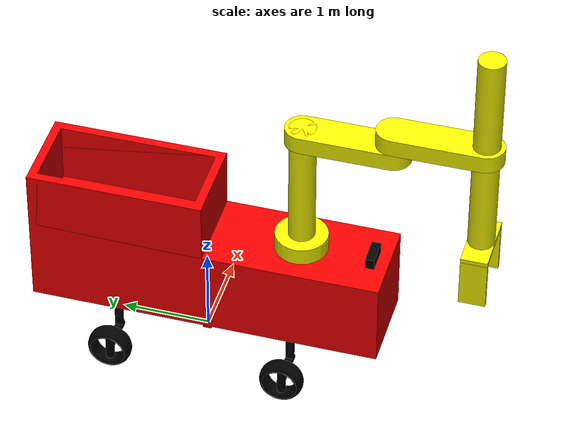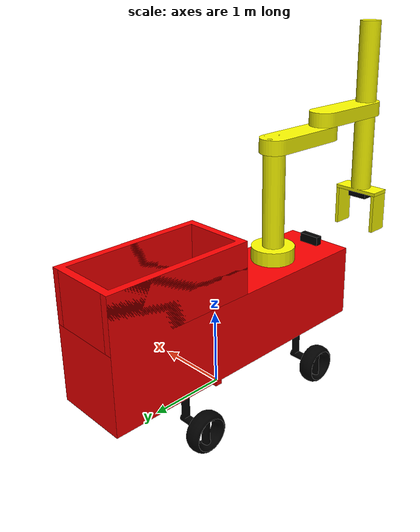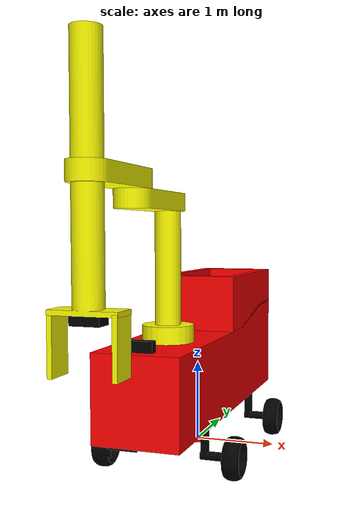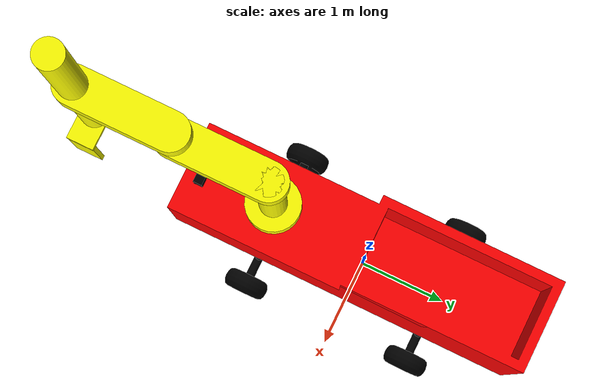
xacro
<?xml version="1.0"?>

<robot name="robot_model" xmlns:xacro="http://wiki.ros.org/xacro">

    <!-- includes -->
    <xacro:include filename="$(find robot_model_description)/urdf/base/robot_base.urdf.xacro"/>
    <xacro:include filename="$(find robot_model_description)/urdf/wheels/rover_wheel.urdf.xacro"/>
    <xacro:include filename="$(find robot_model_description)/urdf/arm/scara.urdf.xacro"/>
    <xacro:include filename="$(find robot_model_description)/urdf/arm/gripper.urdf.xacro"/>
    <xacro:include filename="$(find robot_model_description)/urdf/ros2_control.urdf.xacro"/>
    <xacro:include filename="$(find robot_model_description)/urdf/utils/utils.urdf.xacro"/>
    <xacro:include filename="$(find robot_model_description)/urdf/sensors/camera.urdf.xacro"/>
    <xacro:include filename="$(find robot_model_description)/urdf/sensors/imu_sensor.urdf.xacro"/>
    <xacro:include filename="$(find robot_model_description)/urdf/sensors/sensors.urdf.xacro"/>

    <!-- properties -->
    <xacro:property name="PI" value="3.1415926535897931"/>

    <!-- arguments -->
    <xacro:arg name="robot_ns" default=""/>
    <xacro:arg name="prefix" default=""/>

    <!-- robot parts -->
    <xacro:utils/>

    <!-- base -->
    <xacro:robot_base/>

    <!-- wheels -->
    <xacro:rover_wheel parent="base_link"/>

    <!-- arm -->
    <xacro:scara parent="base_link"/>
    <xacro:gripper parent="arm_gripper_link"/>

    <!-- sensors -->
    <xacro:camera parent="base_link"/>
    <xacro:sensors parent="arm_gripper_link"/>
    <xacro:imu_sensor parent="base_link"/>

    <!-- gazebo ROS control plugins -->
    <xacro:arg name="config_controllers" default="$(find robot_model_description)/config/rover_controllers.yaml"/>
    <xacro:arg name="update_rate" default="30"/>
    <xacro:ros2_control/>

</robot>

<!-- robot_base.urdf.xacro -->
<robot name="robot_model" xmlns:xacro="http://wiki.ros.org/xacro">

  <xacro:macro name="robot_base" >

    <joint name="base_link_joint" type="fixed">
      <origin rpy="0.00000 0.00000 0.00000" xyz="0.00000 0.00000 1.00000"/>
      <parent link="base_footprint"/>
      <child link="base_link"/>
    </joint>

    <joint name="box_down_side_link_joint" type="fixed">
      <origin rpy="0.00000 0.00000 1.57080" xyz="0.00000 1.86075 0.77413"/>
      <parent link="base_link"/>
      <child link="box_down_side_link"/>
    </joint>

    <joint name="box_left_side_link_joint" type="fixed">
      <origin rpy="0.00000 0.00000 0.00000" xyz="0.45000 0.91075 0.77413"/>
      <parent link="base_link"/>
      <child link="box_left_side_link"/>
    </joint>

    <joint name="box_right_side_link_joint" type="fixed">
      <origin rpy="0.00000 0.00000 0.00000" xyz="-0.45000 0.91075 0.77413"/>
      <parent link="base_link"/>
      <child link="box_right_side_link"/>
    </joint>

    <joint name="box_up_side_link_joint" type="fixed">
      <origin rpy="0.00000 0.00000 1.57080" xyz="0.00000 -0.03925 0.77413"/>
      <parent link="base_link"/>
      <child link="box_up_side_link"/>
    </joint>

    <link name="base_link">
      <collision name="Base_collision">
        <origin rpy="0.00000 0.00000 0.00000" xyz="0.00000 -0.09000 -0.07000"/>
        <geometry>
          <box size="1.00000 4.00000 1.00000"/>
        </geometry>
      </collision>
      <inertial>
        <inertia ixx="182.69966" ixy="0.00000" ixz="0.00000" iyy="44.38927" iyz="-36.14004" izz="154.63375"/>
        <origin rpy="0.00000 0.00000 0.00000" xyz="0.00000 0.29214 0.24832"/>
        <mass value="100.00000"/>
      </inertial>
      <visual name="base">
        <origin rpy="0.00000 0.00000 0.00000" xyz="0.00000 0.00000 0.00000"/>
        <material name="red.001"/>
        <geometry>
          <mesh filename="file://$(find robot_model_description)/meshes/dae/Cube.003.dae" scale="0.05000 1.00000 0.35000"/>
        </geometry>
      </visual>
    </link>

    <link name="box_down_side_link">
      <collision name="box_down_side_collision">
        <origin rpy="0.00000 0.00000 0.00000" xyz="0.00000 0.00000 0.00000"/>
        <geometry>
          <box size="0.10000 0.80000 0.70000"/>
        </geometry>
      </collision>
      <inertial>
        <inertia ixx="0.41667" ixy="0.00000" ixz="0.00000" iyy="0.94167" iyz="0.00000" izz="0.54167"/>
        <origin rpy="0.00000 0.00000 0.00000" xyz="0.00000 0.00000 0.00000"/>
        <mass value="10.00000"/>
      </inertial>
      <visual name="box_down_side">
        <origin rpy="0.00000 0.00000 0.00000" xyz="0.00000 0.00000 0.00000"/>
        <material name="red.001"/>
        <geometry>
          <box size="0.10000 0.80000 0.70000"/>
        </geometry>
      </visual>
    </link>

    <link name="box_left_side_link">
      <collision name="box_left_side_collision">
        <origin rpy="0.00000 0.00000 0.00000" xyz="0.00000 0.00000 0.00000"/>
        <geometry>
          <box size="0.10000 2.00000 0.70000"/>
        </geometry>
      </collision>
      <inertial>
        <inertia ixx="3.74167" ixy="0.00000" ixz="0.00000" iyy="0.41667" iyz="0.00000" izz="3.34167"/>
        <origin rpy="0.00000 0.00000 0.00000" xyz="0.00000 0.00000 0.00000"/>
        <mass value="10.00000"/>
      </inertial>
      <visual name="box_left_side">
        <origin rpy="0.00000 0.00000 0.00000" xyz="0.00000 0.00000 0.00000"/>
        <material name="red.001"/>
        <geometry>
          <box size="0.10000 2.00000 0.70000"/>
        </geometry>
      </visual>
    </link>

    <link name="box_right_side_link">
      <collision name="box_right_side_collision">
        <origin rpy="0.00000 0.00000 0.00000" xyz="0.00000 0.00000 0.00000"/>
        <geometry>
          <box size="0.10000 2.00000 0.70000"/>
        </geometry>
      </collision>
      <inertial>
        <inertia ixx="3.74167" ixy="0.00000" ixz="0.00000" iyy="0.41667" iyz="0.00000" izz="3.34167"/>
        <origin rpy="0.00000 0.00000 0.00000" xyz="0.00000 0.00000 0.00000"/>
        <mass value="10.00000"/>
      </inertial>
      <visual name="box_right_side">
        <origin rpy="0.00000 0.00000 0.00000" xyz="0.00000 0.00000 0.00000"/>
        <material name="red.001"/>
        <geometry>
          <box size="0.10000 2.00000 0.70000"/>
        </geometry>
      </visual>
    </link>

    <link name="box_up_side_link">
      <collision name="box_up_side_collision">
        <origin rpy="0.00000 0.00000 0.00000" xyz="0.00000 0.00000 0.00000"/>
        <geometry>
          <box size="0.10000 0.80000 0.70000"/>
        </geometry>
      </collision>
      <inertial>
        <inertia ixx="0.41667" ixy="0.00000" ixz="0.00000" iyy="0.94167" iyz="0.00000" izz="0.54167"/>
        <origin rpy="0.00000 0.00000 0.00000" xyz="0.00000 0.00000 0.00000"/>
        <mass value="10.00000"/>
      </inertial>
      <visual name="box_up_side">
        <origin rpy="0.00000 0.00000 0.00000" xyz="0.00000 0.00000 0.00000"/>
        <material name="red.001"/>
        <geometry>
          <box size="0.10000 0.80000 0.70000"/>
        </geometry>
      </visual>
    </link>

    <link name="base_footprint">
      <collision name="base_footprint_collision">
        <origin rpy="0.00000 0.00000 0.00000" xyz="0.00000 0.00000 0.00000"/>
        <geometry>
          <box size="0.10000 0.10000 0.10000"/>
        </geometry>
      </collision>
      <visual name="base_footprint">
        <origin rpy="0.00000 0.00000 0.00000" xyz="0.00000 0.00000 0.00000"/>
        <material name="red.001"/>
        <geometry>
          <box size="0.10000 0.10000 0.10000"/>
        </geometry>
      </visual>
    </link>

  </xacro:macro>
</robot>

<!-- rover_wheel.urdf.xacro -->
<robot name="robot_model" xmlns:xacro="http://wiki.ros.org/xacro">

  <xacro:macro name="rover_wheel"  params="parent">

    <joint name="subjection_down_left_wheel_link_joint" type="fixed">
      <origin rpy="0.00000 0.00000 0.00000" xyz="0.53571 0.91075 -0.81158"/>
      <parent link="base_link"/>
      <child link="subjection_down_left_wheel_link"/>
    </joint>

    <joint name="subjection_down_right_wheel_link_joint" type="fixed">
      <origin rpy="0.00000 0.00000 0.00000" xyz="-0.53571 0.91075 -0.81158"/>
      <parent link="base_link"/>
      <child link="subjection_down_right_wheel_link"/>
    </joint>

    <joint name="subjection_up_left_wheel_link_joint" type="fixed">
      <origin rpy="0.00000 0.00000 0.00000" xyz="0.53571 -1.08925 -0.81158"/>
      <parent link="base_link"/>
      <child link="subjection_up_left_wheel_link"/>
    </joint>

    <joint name="subjection_up_right_wheel_link_joint" type="fixed">
      <origin rpy="0.00000 0.00000 0.00000" xyz="-0.53571 -1.08925 -0.81158"/>
      <parent link="base_link"/>
      <child link="subjection_up_right_wheel_link"/>
    </joint>

    <joint name="wheel_down_left_link_joint" type="continuous">
      <limit lower="0" upper="0" effort="1000.00000" velocity="100.00000"/>
      <origin rpy="0.00000 1.57080 0.00000" xyz="0.26429 0.00000 -0.06429"/>
      <parent link="subjection_down_left_wheel_link"/>
      <child link="wheel_down_left_link"/>
      <axis xyz="0.00000 0.00000 1.00000"/>
    </joint>

    <joint name="wheel_down_right_link_joint" type="continuous">
      <limit lower="0" upper="0" effort="1000.00000" velocity="100.00000"/>
      <origin rpy="0.00000 1.57080 0.00000" xyz="-0.26429 0.00000 -0.06429"/>
      <parent link="subjection_down_right_wheel_link"/>
      <child link="wheel_down_right_link"/>
      <axis xyz="0.00000 0.00000 1.00000"/>
    </joint>

    <joint name="wheel_up_left_link_joint" type="continuous">
      <limit lower="0" upper="0" effort="1000.00000" velocity="100.00000"/>
      <origin rpy="0.00000 1.57080 0.00000" xyz="0.26429 0.00000 -0.06429"/>
      <parent link="subjection_up_left_wheel_link"/>
      <child link="wheel_up_left_link"/>
      <axis xyz="0.00000 0.00000 1.00000"/>
    </joint>

    <joint name="wheel_up_right_link_joint" type="continuous">
      <limit lower="0" upper="0" effort="1000.00000" velocity="100.00000"/>
      <origin rpy="0.00000 1.57080 0.00000" xyz="-0.26429 0.00000 -0.06429"/>
      <parent link="subjection_up_right_wheel_link"/>
      <child link="wheel_up_right_link"/>
      <axis xyz="0.00000 0.00000 1.00000"/>
    </joint>

    <link name="subjection_down_left_wheel_link">
      <collision name="subjection_down_left_wheel_collision">
        <origin rpy="0.00000 1.57080 0.00000" xyz="0.00000 0.00000 0.00000"/>
        <geometry>
          <mesh filename="file://$(find robot_model_description)/meshes/dae/Cylinder.009.dae" scale="0.05000 0.05000 0.20000"/>
        </geometry>
      </collision>
      <inertial>
        <inertia ixx="0.09178" ixy="0.00000" ixz="0.05238" iyy="0.21726" iyz="0.00000" izz="0.13657"/>
        <origin rpy="0.00000 0.00000 0.00000" xyz="0.00000 0.00000 0.00000"/>
        <mass value="10.00000"/>
      </inertial>
      <visual name="subjection_down_left_wheel">
        <origin rpy="0.00000 1.57080 0.00000" xyz="0.00000 0.00000 0.00000"/>
        <material name="black.007"/>
        <geometry>
          <mesh filename="file://$(find robot_model_description)/meshes/dae/Cylinder.009.dae" scale="0.05000 0.05000 0.20000"/>
        </geometry>
      </visual>
    </link>

    <link name="subjection_down_right_wheel_link">
      <collision name="subjection_down_right_wheel_collision">
        <origin rpy="0.00000 1.57080 0.00000" xyz="0.00000 0.00000 0.00000"/>
        <geometry>
          <mesh filename="file://$(find robot_model_description)/meshes/dae/Cylinder.004.dae" scale="0.05000 0.05000 0.20000"/>
        </geometry>
      </collision>
      <inertial>
        <inertia ixx="0.09178" ixy="0.00000" ixz="-0.05238" iyy="0.21726" iyz="0.00000" izz="0.13657"/>
        <origin rpy="0.00000 0.00000 0.00000" xyz="0.00000 0.00000 0.00000"/>
        <mass value="10.00000"/>
      </inertial>
      <visual name="subjection_down_right_wheel">
        <origin rpy="0.00000 1.57080 0.00000" xyz="0.00000 0.00000 0.00000"/>
        <material name="black.007"/>
        <geometry>
          <mesh filename="file://$(find robot_model_description)/meshes/dae/Cylinder.004.dae" scale="0.05000 0.05000 0.20000"/>
        </geometry>
      </visual>
    </link>

    <link name="subjection_up_left_wheel_link">
      <collision name="subjection_up_left_wheel_collision">
        <origin rpy="0.00000 1.57080 0.00000" xyz="0.00000 0.00000 0.00000"/>
        <geometry>
          <mesh filename="file://$(find robot_model_description)/meshes/dae/Cylinder.010.dae" scale="0.05000 0.05000 0.20000"/>
        </geometry>
      </collision>
      <inertial>
        <inertia ixx="0.09178" ixy="0.00000" ixz="0.05238" iyy="0.21726" iyz="0.00000" izz="0.13657"/>
        <origin rpy="0.00000 0.00000 0.00000" xyz="0.00000 0.00000 0.00000"/>
        <mass value="10.00000"/>
      </inertial>
      <visual name="subjection_up_left_wheel">
        <origin rpy="0.00000 1.57080 0.00000" xyz="0.00000 0.00000 0.00000"/>
        <material name="black.007"/>
        <geometry>
          <mesh filename="file://$(find robot_model_description)/meshes/dae/Cylinder.010.dae" scale="0.05000 0.05000 0.20000"/>
        </geometry>
      </visual>
    </link>

    <link name="subjection_up_right_wheel_link">
      <collision name="subjection_up_right_wheel_collision">
        <origin rpy="0.00000 1.57080 0.00000" xyz="0.00000 0.00000 0.00000"/>
        <geometry>
          <mesh filename="file://$(find robot_model_description)/meshes/dae/Cylinder.011.dae" scale="0.05000 0.05000 0.20000"/>
        </geometry>
      </collision>
      <inertial>
        <inertia ixx="0.09178" ixy="0.00000" ixz="-0.05238" iyy="0.21726" iyz="0.00000" izz="0.13657"/>
        <origin rpy="0.00000 0.00000 0.00000" xyz="0.00000 0.00000 0.00000"/>
        <mass value="10.00000"/>
      </inertial>
      <visual name="subjection_up_right_wheel">
        <origin rpy="0.00000 1.57080 0.00000" xyz="0.00000 0.00000 0.00000"/>
        <material name="black.007"/>
        <geometry>
          <mesh filename="file://$(find robot_model_description)/meshes/dae/Cylinder.011.dae" scale="0.05000 0.05000 0.20000"/>
        </geometry>
      </visual>
    </link>

    <link name="wheel_down_left_link">
      <collision name="wheel_down_left_collision">
        <origin rpy="0.00000 -1.57080 0.00000" xyz="0.00000 0.00000 0.00000"/>
        <geometry>
          <mesh filename="file://$(find robot_model_description)/meshes/dae/Cylinder.002.dae" scale="0.05000 0.05000 0.20000"/>
        </geometry>
        <surface>
          <friction>
            <ode>
              <mu>1.000000</mu>
              <mu2>1.000000</mu2>
            </ode>
          </friction>
        </surface>
      </collision>
      <inertial>
        <inertia ixx="0.28017" ixy="0.00000" ixz="0.00000" iyy="0.16408" iyz="0.00000" izz="0.15377"/>
        <origin rpy="0.00000 0.00000 0.00000" xyz="0.00000 0.00000 0.00000"/>
        <mass value="10.00000"/>
      </inertial>
      <visual name="wheel_down_left">
        <origin rpy="0.00000 -1.57080 0.00000" xyz="0.00000 0.00000 0.00000"/>
        <material name="black.007"/>
        <geometry>
          <mesh filename="file://$(find robot_model_description)/meshes/dae/Cylinder.002.dae" scale="0.05000 0.05000 0.20000"/>
        </geometry>
      </visual>
    </link>

    <link name="wheel_down_right_link">
      <collision name="wheel_down_right_collision">
        <origin rpy="0.00000 -1.57080 0.00000" xyz="0.00000 0.00000 0.00000"/>
        <geometry>
          <mesh filename="file://$(find robot_model_description)/meshes/dae/Cylinder.003.dae" scale="0.05000 0.05000 0.20000"/>
        </geometry>
        <surface>
          <friction>
            <ode>
              <mu>1.000000</mu>
              <mu2>1.000000</mu2>
            </ode>
          </friction>
        </surface>
      </collision>
      <inertial>
        <inertia ixx="0.28017" ixy="0.00000" ixz="0.00000" iyy="0.16408" iyz="0.00000" izz="0.15377"/>
        <origin rpy="0.00000 0.00000 0.00000" xyz="0.00000 0.00000 0.00000"/>
        <mass value="10.00000"/>
      </inertial>
      <visual name="wheel_down_right">
        <origin rpy="0.00000 -1.57080 0.00000" xyz="0.00000 0.00000 0.00000"/>
        <material name="black.007"/>
        <geometry>
          <mesh filename="file://$(find robot_model_description)/meshes/dae/Cylinder.003.dae" scale="0.05000 0.05000 0.20000"/>
        </geometry>
      </visual>
    </link>

    <link name="wheel_up_left_link">
      <collision name="wheel_up_left_collision">
        <origin rpy="0.00000 -1.57080 0.00000" xyz="0.00000 0.00000 0.00000"/>
        <geometry>
          <mesh filename="file://$(find robot_model_description)/meshes/dae/Cylinder.001.dae" scale="0.05000 0.05000 0.20000"/>
        </geometry>
        <surface>
          <friction>
            <ode>
              <mu>1.000000</mu>
              <mu2>1.000000</mu2>
            </ode>
          </friction>
        </surface>
      </collision>
      <inertial>
        <inertia ixx="0.28017" ixy="0.00000" ixz="0.00000" iyy="0.16408" iyz="0.00000" izz="0.15377"/>
        <origin rpy="0.00000 0.00000 0.00000" xyz="0.00000 0.00000 0.00000"/>
        <mass value="10.00000"/>
      </inertial>
      <visual name="wheel_up_left">
        <origin rpy="0.00000 -1.57080 0.00000" xyz="0.00000 0.00000 0.00000"/>
        <material name="black.007"/>
        <geometry>
          <mesh filename="file://$(find robot_model_description)/meshes/dae/Cylinder.001.dae" scale="0.05000 0.05000 0.20000"/>
        </geometry>
      </visual>
    </link>

    <link name="wheel_up_right_link">
      <collision name="wheel_up_right_collision">
        <origin rpy="0.00000 -1.57080 0.00000" xyz="0.00000 0.00000 0.00000"/>
        <geometry>
          <mesh filename="file://$(find robot_model_description)/meshes/dae/Cylinder.dae" scale="0.05000 0.05000 0.20000"/>
        </geometry>
        <surface>
          <friction>
            <ode>
              <mu>1.000000</mu>
              <mu2>1.000000</mu2>
            </ode>
          </friction>
        </surface>
      </collision>
      <inertial>
        <inertia ixx="0.28017" ixy="0.00000" ixz="0.00000" iyy="0.16408" iyz="0.00000" izz="0.15377"/>
        <origin rpy="0.00000 0.00000 0.00000" xyz="0.00000 0.00000 0.00000"/>
        <mass value="10.00000"/>
      </inertial>
      <visual name="wheel_up_right">
        <origin rpy="0.00000 -1.57080 0.00000" xyz="0.00000 0.00000 0.00000"/>
        <material name="black.007"/>
        <geometry>
          <mesh filename="file://$(find robot_model_description)/meshes/dae/Cylinder.dae" scale="0.05000 0.05000 0.20000"/>
        </geometry>
      </visual>
    </link>

    <!-- Transmission for left back wheel -->
    <transmission name="wheel_down_left_joint_link">
    <type>transmission_interface/SimpleTransmission</type>
    <joint name="wheel_down_left_link_joint">
        <hardwareInterface>hardware_interface/VelocityJointInterface</hardwareInterface>
    </joint>
    <actuator name="left_back_wheel_motor">
        <mechanicalReduction>1</mechanicalReduction>
    </actuator>
    </transmission>

    <!-- Transmission for left front wheel -->
    <transmission name="wheel_up_left_joint_link">
    <type>transmission_interface/SimpleTransmission</type>
    <joint name="wheel_up_left_link_joint">
        <hardwareInterface>hardware_interface/VelocityJointInterface</hardwareInterface>
    </joint>
    <actuator name="left_front_wheel_motor">
        <mechanicalReduction>1</mechanicalReduction>
    </actuator>
    </transmission>

    <!-- Transmission for right back wheel -->
    <transmission name="wheel_down_right_joint_link">
    <type>transmission_interface/SimpleTransmission</type>
    <joint name="wheel_down_right_link_joint">
        <hardwareInterface>hardware_interface/VelocityJointInterface</hardwareInterface>
    </joint>
    <actuator name="right_back_wheel_motor">
        <mechanicalReduction>1</mechanicalReduction>
    </actuator>
    </transmission>

    <!-- Transmission for right front wheel -->
    <transmission name="wheel_up_right_joint_link">
    <type>transmission_interface/SimpleTransmission</type>
    <joint name="wheel_up_right_link_joint">
        <hardwareInterface>hardware_interface/VelocityJointInterface</hardwareInterface>
    </joint>
    <actuator name="right_front_wheel_motor">
        <mechanicalReduction>1</mechanicalReduction>
    </actuator>
    </transmission>

    <gazebo reference="wheel_down_left_link">
    <mu1>5</mu1>
    <mu2>5</mu2>
    </gazebo>

    <gazebo reference="wheel_up_left_link">
    <mu1>5</mu1>
    <mu2>5</mu2>
    </gazebo>

    <gazebo reference="wheel_down_right_link">
    <mu1>5</mu1>
    <mu2>5</mu2>
    </gazebo>

    <gazebo reference="wheel_up_right_link">
    <mu1>5</mu1>
    <mu2>5</mu2>
    </gazebo>

  </xacro:macro>
</robot>

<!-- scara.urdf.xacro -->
<robot name="robot_model" xmlns:xacro="http://wiki.ros.org/xacro">

  <xacro:macro name="scara" params="parent" >

    <joint name="arm_1_link_joint" type="continuous">
      <limit lower="0" upper="0" effort="1000.00000" velocity="100.00000"/>
      <origin rpy="0.00000 0.00000 0.00000" xyz="0.00000 0.00000 0.65000"/>
      <parent link="arm_column_link"/>
      <child link="arm_1_link"/>
      <axis xyz="0.00000 0.00000 1.00000"/>
    </joint>

    <joint name="arm_2_link_joint" type="continuous">
      <limit lower="0" upper="0" effort="1000.00000" velocity="100.00000"/>
      <origin rpy="0.00000 0.00000 0.00000" xyz="0.00000 -1.00000 0.20000"/>
      <parent link="arm_1_link"/>
      <child link="arm_2_link"/>
      <axis xyz="0.00000 0.00000 1.00000"/>
    </joint>

    <joint name="arm_base_link_joint" type="fixed">
      <origin rpy="0.00000 0.00000 0.00000" xyz="0.00000 -1.08925 0.52413"/>
      <parent link="base_link"/>
      <child link="arm_base_link"/>
    </joint>

    <joint name="arm_column_link_joint" type="continuous">
      <limit lower="0" upper="0" effort="1000.00000" velocity="100.00000"/>
      <origin rpy="0.00000 0.00000 0.00000" xyz="0.00000 0.00000 0.85000"/>
      <parent link="arm_base_link"/>
      <child link="arm_column_link"/>
      <axis xyz="0.00000 0.00000 1.00000"/>
    </joint>

    <joint name="arm_gripper_link_joint" type="prismatic">
      <limit lower="-1.25000" upper="1.00000" effort="1000.00000" velocity="100.00000"/>
      <origin rpy="0.00000 0.00000 0.00000" xyz="0.00000 -1.00000 -0.07053"/>
      <parent link="arm_2_link"/>
      <child link="arm_gripper_link"/>
      <axis xyz="0.00000 0.00000 1.00000"/>
    </joint>

    <link name="arm_1_link">
      <collision name="arm_1_collision">
        <origin rpy="0.00000 0.00000 0.00000" xyz="0.00000 -0.50000 0.00000"/>
        <geometry>
          <mesh filename="file://$(find robot_model_description)/meshes/dae/Cylinder.015.dae" scale="0.20000 0.20000 0.10000"/>
        </geometry>
      </collision>
      <inertial>
        <inertia ixx="0.70318" ixy="0.00000" ixz="0.00000" iyy="0.07043" iyz="0.00000" izz="0.74238"/>
        <origin rpy="0.00000 0.00000 0.00000" xyz="0.00000 -0.50000 0.00000"/>
        <mass value="5.00000"/>
      </inertial>
      <visual name="arm_1">
        <origin rpy="0.00000 0.00000 0.00000" xyz="0.00000 -0.50000 0.00000"/>
        <material name="yellow.001"/>
        <geometry>
          <mesh filename="file://$(find robot_model_description)/meshes/dae/Cylinder.015.dae" scale="0.20000 0.20000 0.10000"/>
        </geometry>
      </visual>
    </link>

    <link name="arm_2_link">
      <collision name="arm_2_collision">
        <origin rpy="0.00000 0.00000 0.00000" xyz="0.00000 -0.50000 0.00000"/>
        <geometry>
          <mesh filename="file://$(find robot_model_description)/meshes/dae/Cylinder.017.dae" scale="0.20000 0.20000 0.10000"/>
        </geometry>
      </collision>
      <inertial>
        <inertia ixx="0.70318" ixy="0.00000" ixz="0.00000" iyy="0.07043" iyz="0.00000" izz="0.74238"/>
        <origin rpy="0.00000 0.00000 0.00000" xyz="0.00000 -0.50000 0.00000"/>
        <mass value="5.00000"/>
      </inertial>
      <visual name="arm_2">
        <origin rpy="0.00000 0.00000 0.00000" xyz="0.00000 -0.50000 0.00000"/>
        <material name="yellow.001"/>
        <geometry>
          <mesh filename="file://$(find robot_model_description)/meshes/dae/Cylinder.017.dae" scale="0.20000 0.20000 0.10000"/>
        </geometry>
      </visual>
    </link>

    <link name="arm_base_link">
      <collision name="arm_base_collision">
        <origin rpy="0.00000 0.00000 0.00000" xyz="0.00000 0.00000 0.00000"/>
        <geometry>
          <cylinder radius="0.30000" length="0.20000"/>
        </geometry>
      </collision>
      <inertial>
        <inertia ixx="0.12917" ixy="0.00000" ixz="0.00000" iyy="0.12917" iyz="0.00000" izz="0.22500"/>
        <origin rpy="0.00000 0.00000 0.00000" xyz="0.00000 0.00000 0.00000"/>
        <mass value="5.00000"/>
      </inertial>
      <visual name="arm_base">
        <origin rpy="0.00000 0.00000 0.00000" xyz="0.00000 0.00000 0.00000"/>
        <material name="yellow.001"/>
        <geometry>
          <cylinder radius="0.30000" length="0.20000"/>
        </geometry>
      </visual>
    </link>

    <link name="arm_column_link">
      <collision name="arm_column_collision">
        <origin rpy="0.00000 0.00000 0.00000" xyz="0.00000 0.00000 0.00000"/>
        <geometry>
          <cylinder radius="0.15000" length="1.50000"/>
        </geometry>
      </collision>
      <inertial>
        <inertia ixx="1.93125" ixy="0.00000" ixz="0.00000" iyy="1.93125" iyz="0.00000" izz="0.11250"/>
        <origin rpy="0.00000 0.00000 0.00000" xyz="0.00000 0.00000 0.00000"/>
        <mass value="10.00000"/>
      </inertial>
      <visual name="arm_column">
        <origin rpy="0.00000 0.00000 0.00000" xyz="0.00000 0.00000 0.00000"/>
        <material name="yellow.001"/>
        <geometry>
          <cylinder radius="0.15000" length="1.50000"/>
        </geometry>
      </visual>
    </link>

    <link name="arm_gripper_link">
      <collision name="arm_gripper_collision">
        <origin rpy="0.00000 0.00000 0.00000" xyz="0.00000 0.00000 0.00003"/>
        <geometry>
          <mesh filename="file://$(find robot_model_description)/meshes/dae/Cube.007.dae" scale="0.35000 0.15000 0.02500"/>
        </geometry>
      </collision>
      <inertial>
        <inertia ixx="6.42247" ixy="0.00000" ixz="0.00000" iyy="6.52276" iyz="0.00000" izz="0.20346"/>
        <origin rpy="0.00000 0.00000 0.00000" xyz="0.00000 0.00000 1.05646"/>
        <mass value="10.00000"/>
      </inertial>
      <visual name="arm_gripper">
        <origin rpy="0.00000 0.00000 0.00000" xyz="0.00000 0.00000 0.00000"/>
        <material name="yellow.001"/>
        <geometry>
          <mesh filename="file://$(find robot_model_description)/meshes/dae/Cube.007.dae" scale="0.35000 0.15000 0.02500"/>
        </geometry>
      </visual>
    </link>

  </xacro:macro>
</robot>

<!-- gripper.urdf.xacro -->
<robot name="robot_model" xmlns:xacro="http://wiki.ros.org/xacro">

  <xacro:macro name="gripper"  params="parent" >

    <joint name="gripper_left_link_joint" type="prismatic">
      <limit lower="0.00000" upper="0.15000" effort="1000.00000" velocity="100.00000"/>
      <origin rpy="0.00000 -1.57080 0.00000" xyz="0.32000 0.00000 -2.53589"/>
      <parent link="${parent}"/>
      <child link="gripper_left_link"/>
      <axis xyz="0.00000 0.00000 1.00000"/>
    </joint>

    <joint name="gripper_right_link_joint" type="prismatic">
      <limit lower="0.00000" upper="0.15000" effort="1000.00000" velocity="100.00000"/>
      <origin rpy="0.00000 1.57080 0.00000" xyz="-0.32000 0.00000 -2.53589"/>
      <parent link="${parent}"/>
      <child link="gripper_right_link"/>
      <axis xyz="0.00000 0.00000 1.00000"/>
    </joint>

    <link name="gripper_left_link">
      <collision name="gripper_left_collision">
        <origin rpy="3.14159 0.00000 3.14159" xyz="1.05643 0.00000 0.00000"/>
        <geometry>
          <mesh filename="file://$(find robot_model_description)/meshes/dae/Cube.009.dae" scale="0.30000 0.15000 0.02500"/>
        </geometry>
      </collision>
      <inertial>
        <inertia ixx="0.18750" ixy="0.00000" ixz="0.00000" iyy="0.15104" iyz="0.00000" izz="0.03854"/>
        <origin rpy="0.00000 0.00000 0.00000" xyz="1.05643 0.00000 0.00000"/>
        <mass value="5.00000"/>
      </inertial>
      <visual name="gripper_left">
        <origin rpy="3.14159 0.00000 3.14159" xyz="1.05643 0.00000 0.00000"/>
        <material name="yellow.001"/>
        <geometry>
          <mesh filename="file://$(find robot_model_description)/meshes/dae/Cube.009.dae" scale="0.30000 0.15000 0.02500"/>
        </geometry>
      </visual>
    </link>

    <link name="gripper_right_link">
      <collision name="gripper_right_collision">
        <origin rpy="0.00000 0.00000 0.00000" xyz="-1.05643 0.00000 0.00000"/>
        <geometry>
          <mesh filename="file://$(find robot_model_description)/meshes/dae/Cube.008.dae" scale="0.30000 0.15000 0.02500"/>
        </geometry>
      </collision>
      <inertial>
        <inertia ixx="0.18750" ixy="0.00000" ixz="0.00000" iyy="0.15104" iyz="0.00000" izz="0.03854"/>
        <origin rpy="0.00000 0.00000 0.00000" xyz="-1.05643 0.00000 0.00000"/>
        <mass value="5.00000"/>
      </inertial>
      <visual name="gripper_right">
        <origin rpy="0.00000 0.00000 0.00000" xyz="-1.05643 0.00000 0.00000"/>
        <material name="yellow.001"/>
        <geometry>
          <mesh filename="file://$(find robot_model_description)/meshes/dae/Cube.008.dae" scale="0.30000 0.15000 0.02500"/>
        </geometry>
      </visual>
    </link>

  </xacro:macro>
</robot>

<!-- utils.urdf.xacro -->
<robot name="robot_model" xmlns:xacro="http://wiki.ros.org/xacro">

  <xacro:macro name="utils" >

    <material name="black.007">
      <color rgba="0.00000 0.00000 0.00000 1.00000"/>
    </material>

    <material name="red.001">
      <color rgba="1.00000 0.00000 0.00000 1.00000"/>
    </material>

    <material name="yellow.001">
      <color rgba="1.00000 1.00000 0.00000 1.00000"/>
    </material>

  </xacro:macro>
</robot>

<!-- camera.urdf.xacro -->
<robot name="robot_model" xmlns:xacro="http://wiki.ros.org/xacro">

  <xacro:macro name="camera" params="parent" >

    <joint name="camera_link_joint" type="fixed">
      <origin rpy="0.00000 0.00000 -1.57000" xyz="0.00000 -1.90000 0.65000"/>
      <parent link="${parent}"/>
      <child link="camera_link"/>
    </joint>

    <link name="camera_link">
      <collision name="camera_collision">
        <origin rpy="0.00000 0.00000 0.00000" xyz="0.00000 0.00000 0.00000"/>
        <geometry>
          <box size="0.10000 0.30000 0.20000"/>
        </geometry>
      </collision>
      <visual name="camera">
        <origin rpy="0.00000 0.00000 0.00000" xyz="0.00000 0.00000 -0.20000"/>
        <material name="black.007"/>
        <geometry>
          <box size="0.10000 0.30000 0.20000"/>
        </geometry>
      </visual>
    </link>

    <gazebo reference="camera_link">
      <sensor name="camera" type="camera">
        <visualize>true</visualize>
        <update_rate>30</update_rate>
        <topic>/front_camera/image</topic>
        <camera>
          <horizontal_fov>1.57</horizontal_fov>
          <image>
            <width>640</width>
            <height>480</height>
            <format>R8G8B8</format>
          </image>
          <clip>
            <near>0.10</near>
            <far>15.0</far>
          </clip>
          <noise>
            <type>gaussian</type>
            <mean>0.0</mean>
            <stddev>0.007</stddev>
          </noise>
          <optical_frame_id>camera_link</optical_frame_id>
        </camera>
      </sensor>
    </gazebo>

  </xacro:macro>
</robot>

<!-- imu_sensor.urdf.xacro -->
<robot name="robot_model" xmlns:xacro="http://wiki.ros.org/xacro">

  <xacro:macro name="imu_sensor" params="parent" >

    <joint name="IMU_link_joint" type="fixed">
      <origin rpy="0.00000 0.00000 0.00000" xyz="0.00000 0.00000 0.15000"/>
      <parent link="${parent}"/>
      <child link="IMU_link"/>
    </joint>

    <link name="IMU_link">
      <collision name="IMU_collision">
        <origin rpy="0.00000 0.00000 0.00000" xyz="0.00000 0.00000 0.00000"/>
        <geometry>
            <box size="0.10000 0.10000 0.10000"/>
        </geometry>
      </collision>
      <visual name="IMU">
        <origin rpy="0.00000 0.00000 0.00000" xyz="0.00000 0.00000 0.00000"/>
        <material name="black.007"/>
        <geometry>
          <box size="0.10000 0.10000 0.10000"/>
        </geometry>
      </visual>
    </link>

    <gazebo reference="IMU_link">
      <sensor name="IMU" type="imu">
        <always_on>1</always_on>
        <update_rate>30</update_rate>
        <topic>/imu/data</topic>
      </sensor>
    </gazebo>

  </xacro:macro>
</robot>

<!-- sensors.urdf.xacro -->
<robot name="robot_model" xmlns:xacro="http://wiki.ros.org/xacro">

  <xacro:macro name="sensors"  params="parent">

    <joint name="sensors_link_joint" type="fixed">
      <origin rpy="0.00000 1.57000 -1.57000" xyz="0.00000 0.00000 -1.25000"/>
      <parent link="${parent}"/>
      <child link="sensors_link"/>
    </joint>

    <link name="sensors_link">
      <collision name="sensors_collision">
        <origin rpy="0.00000 0.00000 0.00000" xyz="0.00000 0.00000 0.00000"/>
        <geometry>
          <box size="0.10000 0.30000 0.20000"/>
        </geometry>
      </collision>
      <visual name="sensors">
        <origin rpy="0.00000 0.00000 0.00000" xyz="0.00000 0.00000 0.00000"/>
        <material name="black.007"/>
        <geometry>
          <box size="0.10000 0.30000 0.20000"/>
        </geometry>
      </visual>
      <inertial>
        <mass value="1.0"/>
        <origin xyz="0 0 0"/>
        <inertia ixx="0.1" ixy="0" ixz="0" iyy="0.1" iyz="0" izz="0.1"/>
      </inertial>
    </link>

    <gazebo reference="sensors_link">
      <sensor name="sensors" type="camera">
        <visualize>true</visualize>
        <update_rate>30</update_rate>
        <topic>/arm_camera/image</topic>
        <camera>
          <horizontal_fov>1.57</horizontal_fov>
          <image>
            <width>640</width>
            <height>480</height>
            <format>R8G8B8</format>
          </image>
          <clip>
            <near>0.10</near>
            <far>15.0</far>
          </clip>
          <noise>
            <type>gaussian</type>
            <mean>0.0</mean>
            <stddev>0.007</stddev>
          </noise>
          <optical_frame_id>sensors_link</optical_frame_id>
        </camera>
      </sensor>
    </gazebo>

  </xacro:macro>
</robot>
